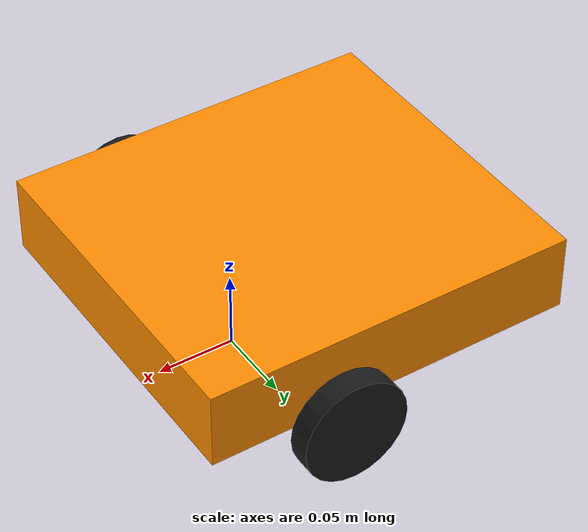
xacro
<?xml version="1.0"?>
<robot xmlns:xacro="http://www.ros.org/wiki/xacro" name="epmc_demo_bot">

    <!-- ################### inertia macros  ############################-->
    <xacro:macro name="inertial_sphere" params="mass radius *origin">
        <inertial>
            <xacro:insert_block name="origin"/>
            <mass value="${mass}" />
            <inertia ixx="${(2/5) * mass * (radius*radius)}" ixy="0.0" ixz="0.0"
                    iyy="${(2/5) * mass * (radius*radius)}" iyz="0.0"
                    izz="${(2/5) * mass * (radius*radius)}" />
        </inertial>
    </xacro:macro>

    <xacro:macro name="inertial_box" params="mass x y z *origin">
        <inertial>
            <xacro:insert_block name="origin"/>
            <mass value="${mass}" />
            <inertia ixx="${(1/12) * mass * (y*y+z*z)}" ixy="0.0" ixz="0.0"
                    iyy="${(1/12) * mass * (x*x+z*z)}" iyz="0.0"
                    izz="${(1/12) * mass * (x*x+y*y)}" />
        </inertial>
    </xacro:macro>

    <xacro:macro name="inertial_cylinder" params="mass length radius *origin">
        <inertial>
            <xacro:insert_block name="origin"/>
            <mass value="${mass}" />
            <inertia ixx="${(1/12) * mass * (3*radius*radius + length*length)}" ixy="0.0" ixz="0.0"
                    iyy="${(1/12) * mass * (3*radius*radius + length*length)}" iyz="0.0"
                    izz="${(1/2) * mass * (radius*radius)}" />
        </inertial>
    </xacro:macro>

    <!-- ################### color materials  ############################-->
    <material name="orange">
        <color rgba="1 0.55 0 1"/>
    </material>

    <material name="black">
        <color rgba="0.1 0.1 0.1 1"/>
    </material>

    <material name="silver">
        <color rgba="0.6 0.6 0.6 1"/>
    </material>

    <!-- ################### robot properties  ############################-->
    <xacro:property name="chassis_length" value="0.24"/>
    <xacro:property name="chassis_width" value="0.22"/>
    <xacro:property name="chassis_height" value="0.05"/>
    <xacro:property name="chassis_mass" value="3.0"/>

    <xacro:property name="wheel_seperation" value="0.25"/>
    <xacro:property name="wheel_radius" value="0.034"/>
    <xacro:property name="wheel_width" value="0.015"/>
    <xacro:property name="wheel_mass" value="0.08"/>

    <xacro:property name="castor_wheel_radius" value="0.025"/>
    <xacro:property name="castor_wheel_mass" value="0.04"/>

    <!-- add the EPMC ros2 control -->
    <xacro:include filename="ros2_control.xacro" />

    <!-- BASE LINK -->

    <link name="base_link">
    </link>

    <!-- CHASSIS LINK -->

    <joint name="chassis_joint" type="fixed">
        <parent link="base_link"/>
        <child link="chassis"/>
        <origin xyz="0 0 ${wheel_radius}"/>
    </joint>

    <link name="chassis">
        <visual>
          <origin xyz="${-chassis_length/6} 0 ${chassis_height/2}" rpy="0 0 0"/>
          <geometry>
              <box size="${chassis_length} ${chassis_width} ${chassis_height}"/>
          </geometry>
          <material name="orange"/>
        </visual>
        <collision>
           <origin xyz="${-chassis_length/6} 0 ${chassis_height/2}" rpy="0 0 0"/>
            <geometry>
                <box size="${chassis_length} ${chassis_width} ${chassis_height}"/>
            </geometry>
        </collision>
        <xacro:inertial_box mass="${chassis_mass}" x="${chassis_length}" y="${chassis_width}" z="${chassis_height}">
            <origin xyz="${-chassis_length/6} 0 ${wheel_radius*2}" rpy="0 0 0"/>
        </xacro:inertial_box>
    </link>

    <!-- LEFT DRIVE WHEEL -->

    <joint name="left_wheel_joint" type="continuous">
      <parent link="chassis"/>
      <child link="left_wheel"/>
      <origin xyz="0 ${wheel_seperation/2} 0" rpy="${-pi/2} 0 0"/>
      <axis xyz="0 0 1"/>
    </joint>

    <link name="left_wheel">
      <visual>
          <origin xyz="0 0 0" rpy="0 0 0"/>
          <geometry>
              <cylinder radius="${wheel_radius}" length="${wheel_width}"/>
          </geometry>
          <material name="black"/>
      </visual>
      <collision>
      <origin xyz="0 0 0" rpy="0 0 0"/>
          <geometry>
              <cylinder radius="${wheel_radius}" length="${wheel_width}"/>
          </geometry>
      </collision>
      <xacro:inertial_cylinder mass="${wheel_mass}" length="${wheel_width}" radius="${wheel_radius}">
          <origin xyz="0 0 0" rpy="0 0 0"/>
      </xacro:inertial_cylinder>
    </link>

    <!-- RIGHT DRIVE WHEEL -->

    <joint name="right_wheel_joint" type="continuous">
      <parent link="chassis"/>
      <child link="right_wheel"/>
      <origin xyz="0 ${-wheel_seperation/2} 0" rpy="${-pi/2} 0 0"/>
      <axis xyz="0 0 1"/>
    </joint>

    <link name="right_wheel">
      <visual>
          <origin xyz="0 0 0" rpy="0 0 0"/>
          <geometry>
              <cylinder radius="${wheel_radius}" length="${wheel_width}"/>
          </geometry>
          <material name="black"/>
      </visual>
      <collision>
      <origin xyz="0 0 0" rpy="0 0 0"/>
          <geometry>
              <cylinder radius="${wheel_radius}" length="${wheel_width}"/>
          </geometry>
      </collision>
      <xacro:inertial_cylinder mass="${wheel_mass}" length="${wheel_width}" radius="${wheel_radius}">
          <origin xyz="0 0 0" rpy="0 0 0"/>
      </xacro:inertial_cylinder>
    </link>

    <!--  CASTOR WHEEL LINK -->

    <joint name="castor_wheel_joint" type="fixed">
        <parent link="chassis"/>
        <child link="castor_wheel"/>
        <origin xyz="${-chassis_length/2} 0 0"/>
    </joint>

    <link name="castor_wheel">
        <visual>
            <origin xyz="0 0 0" rpy="0 0 0"/>
            <geometry>
                <sphere radius="${wheel_radius}" />
            </geometry>
            <material name="silver"/>
        </visual>
        <collision>
           <origin xyz="0 0 0" rpy="0 0 0"/>
            <geometry>
                <sphere radius="${wheel_radius}" />
            </geometry>
        </collision>
        <xacro:inertial_sphere mass="${castor_wheel_mass}" radius="${wheel_radius}">
            <origin xyz="0 0 0" rpy="0 0 0"/>
        </xacro:inertial_sphere>
    </link>

</robot>
